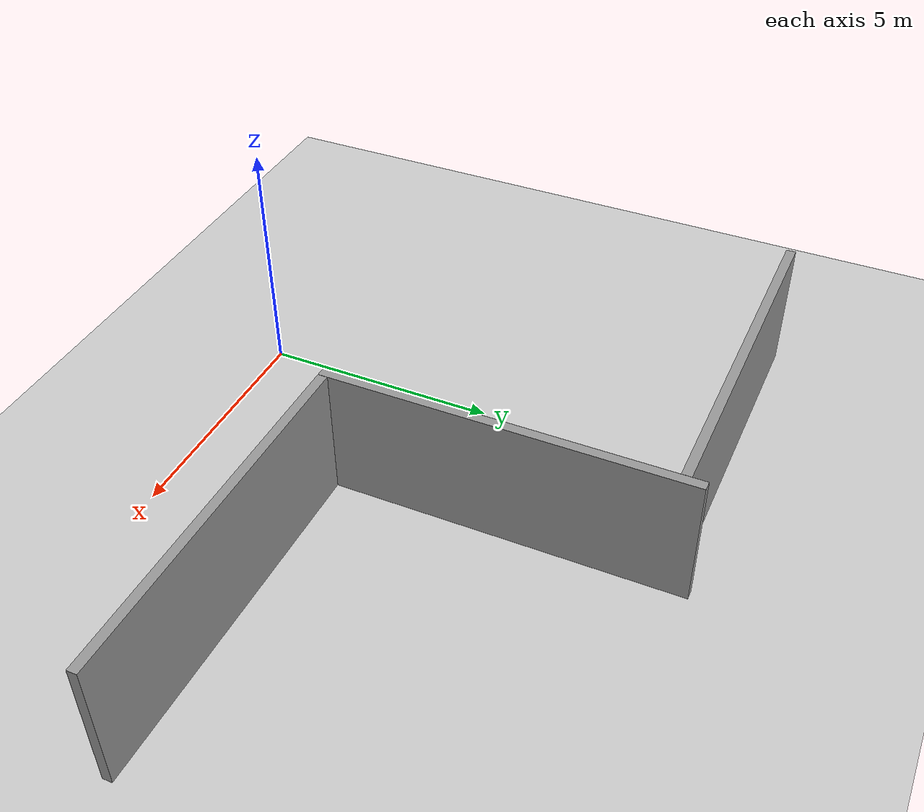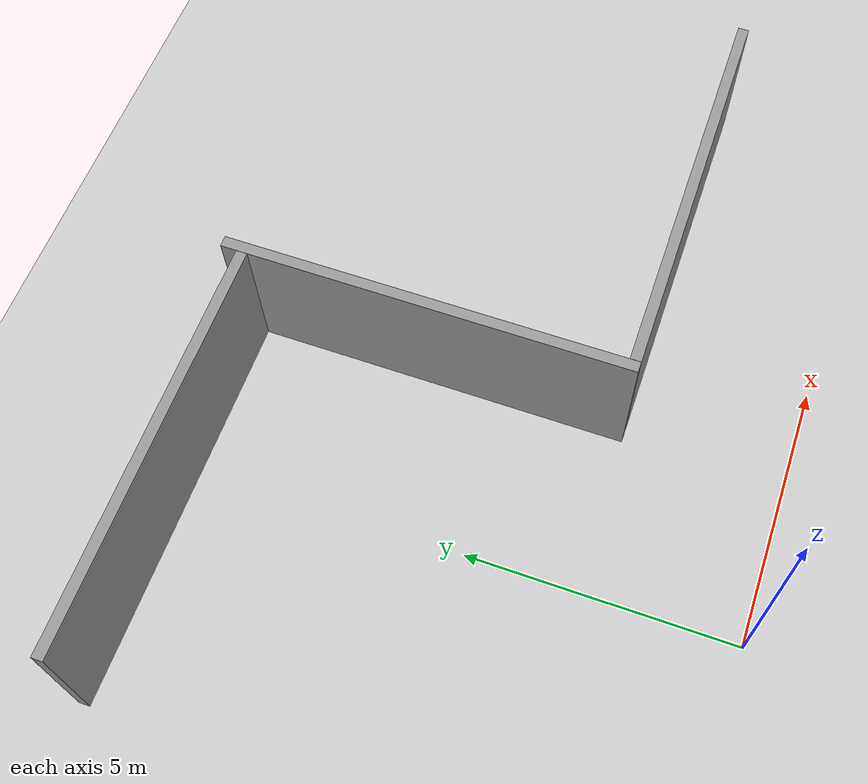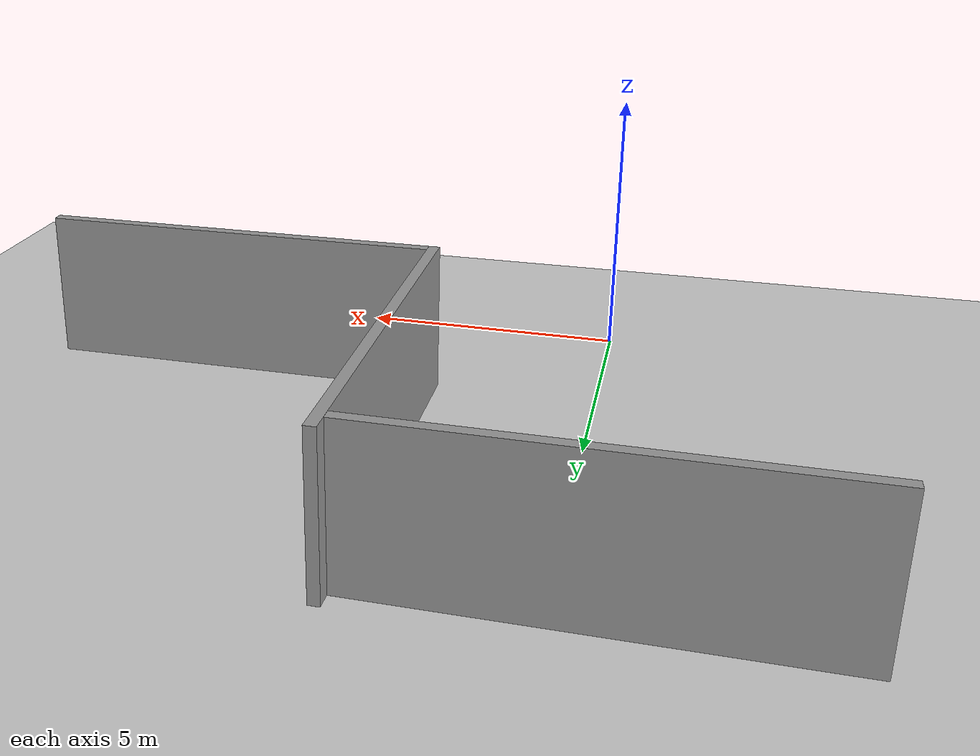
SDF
<?xml version="1.0" ?>
<sdf version="1.4">
  <world name="default">
    <!-- A global light source -->
    <include>
      <uri>model://sun</uri>
    </include>
    <!-- A ground plane -->
    <include>
      <uri>model://ground_plane</uri>
    </include>
    <!-- The Willow Garaga offices -->
    <include>
	<uri>model://grey_wall</uri>
	<pose frame=''>-0.75 10.1 0 0 0 0</pose>
    </include>
    <include>
	<uri>model://grey_wall</uri>
	<pose frame=''>3.1 6.75 0 0 0 1.57</pose>
    </include>
    <include>
	<uri>model://grey_wall</uri>
	<pose frame=''>6.95 3.1 0 0 0 0</pose>
    </include>

  </world>
</sdf>

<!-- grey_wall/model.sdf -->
<sdf version="1.5">
  <model name="grey_wall">
    <static>true</static>
    <link name="link">
      <pose>0 0 1.4 0 0 0</pose>
      <collision name="collision">
        <geometry>
          <box>
            <size>7.5 0.2 2.8</size>
          </box>
        </geometry>
      </collision>
      <visual name="visual">
        <cast_shadows>false</cast_shadows>
        <geometry>
          <box>
            <size>7.5 0.2 2.8</size>
          </box>
        </geometry>
        <material>
          <script>
            <uri>model://../model_source/models/grey_wall/materials/scripts</uri>
            <uri>model://../model_source/models/grey_wall/materials/textures</uri>
            <name>vrc/grey_wall</name>
          </script>
        </material>
      </visual>
    </link>
  </model>
</sdf>
